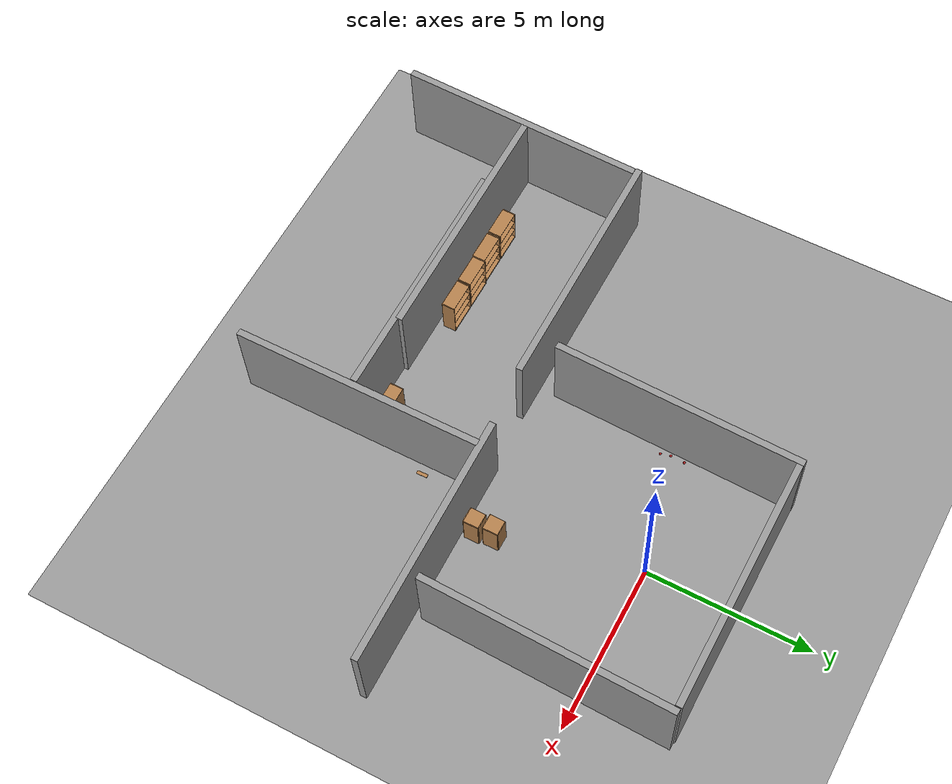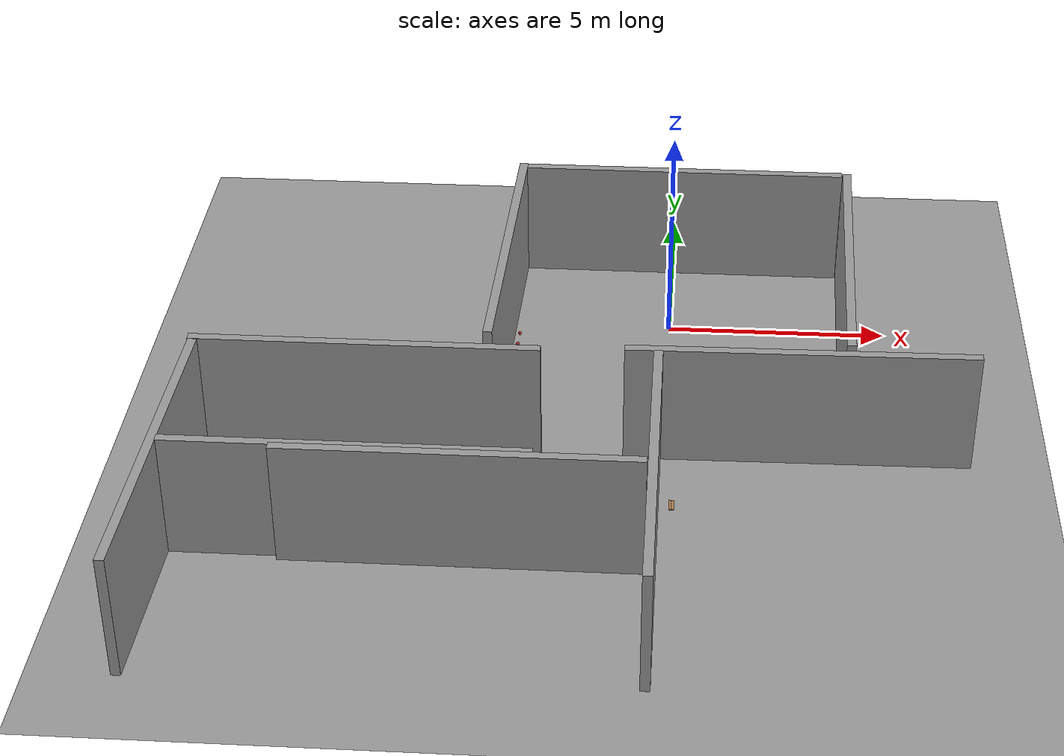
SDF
<sdf version="1.6">
 <world name="default">
  <light name="sun" type="directional">
   <pose>0 0 15 0 -0 0</pose>
   <diffuse>1 1 1 1</diffuse>
   <specular>0.1 0.1 0.1 1</specular>
   <attenuation>
    <range>1000</range>
    <constant>0.9</constant>
    <linear>0.01</linear>
    <quadratic>0.001</quadratic>
   </attenuation>
   <direction>-0.5 0.5 -1</direction>
  </light>
  <gravity>0 0 -9.8</gravity>
  <magnetic_field>6e-06 2.3e-05 -4.2e-05</magnetic_field>
  <atmosphere type="adiabatic"/>
  <physics name="default_physics" default="0" type="ode">
   <max_step_size>0.001</max_step_size>
   <real_time_factor>1</real_time_factor>
   <real_time_update_rate>1000</real_time_update_rate>
  </physics>
  <scene><ambient>0.4 0.4 0.4 1</ambient><background>0.7 0.7 0.7 1</background><shadows>1</shadows></scene>
  <spherical_coordinates>
   <surface_model>EARTH_WGS84</surface_model>
   <latitude_deg>0</latitude_deg>
   <longitude_deg>0</longitude_deg>
   <elevation>0</elevation>
   <heading_deg>0</heading_deg>
  </spherical_coordinates>
  <model name="ground_plane_0">
   <static>1</static>
   <link name="link">
    <collision name="collision">
     <geometry><plane><normal>0 0 1</normal><size>100 100</size></plane></geometry>
     <surface><friction><ode><mu>100</mu><mu2>50</mu2></ode></friction></surface>
    </collision>
    <visual name="visual">
     <cast_shadows>0</cast_shadows>
     <geometry><plane><normal>0 0 1</normal><size>100 100</size></plane></geometry>
     <material>
      <script><uri>file://media/materials/scripts/gazebo.material</uri><name>Gazebo/Grey</name></script>
     </material>
    </visual>
   </link>
   <pose>2.42095 0.905286 0 0 -0 0</pose>
  </model>
  <model name="cricket_ball">
   <link name="link">
    <pose>0 0 0.0375 0 -0 0</pose>
    <inertial>
     <mass>0.1467</mass>
     <inertia>
      <ixx>8.25187e-05</ixx>
      <ixy>0</ixy>
      <ixz>0</ixz>
      <iyy>8.25187e-05</iyy>
      <iyz>0</iyz>
      <izz>8.25187e-05</izz>
     </inertia>
    </inertial>
    <collision name="collision">
     <geometry><sphere><radius>0.0375</radius></sphere></geometry>
     <surface>
      <contact>
       <poissons_ratio>0.347</poissons_ratio>
       <elastic_modulus>8.8e+09</elastic_modulus>
       <ode><kp>100000</kp><kd>100</kd><max_vel>100</max_vel><min_depth>0.001</min_depth></ode>
      </contact>
      <friction>
       <torsional>
        <coefficient>1</coefficient>
        <use_patch_radius>0</use_patch_radius>
        <surface_radius>0.01</surface_radius>
       </torsional>
      </friction>
     </surface>
    </collision>
    <visual name="visual">
     <geometry><sphere><radius>0.0375</radius></sphere></geometry>
     <material>
      <script><uri>file://media/materials/scripts/gazebo.material</uri><name>Gazebo/Red</name></script>
     </material>
    </visual>
    <velocity_decay><linear>0</linear><angular>0.005</angular></velocity_decay>
   </link>
   <pose>-3.50926 -0.898465 -0.001014 0 -0 0</pose>
  </model>
  <model name="grey_wall_clone">
   <static>1</static>
   <link name="link">
    <pose>0 0 1.4 0 -0 0</pose>
    <collision name="collision"><geometry><box><size>7.5 0.2 2.8</size></box></geometry></collision>
    <visual name="visual">
     <cast_shadows>0</cast_shadows>
     <geometry><box><size>7.5 0.2 2.8</size></box></geometry>
     <material>
      <script>
       <uri>model://grey_wall/materials/scripts</uri>
       <uri>model://grey_wall/materials/textures</uri>
       <name>vrc/grey_wall</name>
      </script>
     </material>
    </visual>
   </link>
   <pose>-6.39018 -5.27088 0 0 -0 0</pose>
  </model>
  <model name="grey_wall_clone_5">
   <static>1</static>
   <link name="link">
    <pose>0 0 1.4 0 -0 0</pose>
    <collision name="collision"><geometry><box><size>7.5 0.2 2.8</size></box></geometry></collision>
    <visual name="visual">
     <cast_shadows>0</cast_shadows>
     <geometry><box><size>7.5 0.2 2.8</size></box></geometry>
     <material>
      <script>
       <uri>model://grey_wall/materials/scripts</uri>
       <uri>model://grey_wall/materials/textures</uri>
       <name>vrc/grey_wall</name>
      </script>
     </material>
    </visual>
   </link>
   <pose>-4.01108 -9.09254 0 0 -0 0</pose>
  </model>
  <model name="grey_wall_clone_4_clone_0">
   <static>1</static>
   <link name="link">
    <pose>0 0 1.4 0 -0 0</pose>
    <collision name="collision"><geometry><box><size>7.5 0.2 2.8</size></box></geometry></collision>
    <visual name="visual">
     <cast_shadows>0</cast_shadows>
     <geometry><box><size>7.5 0.2 2.8</size></box></geometry>
     <material>
      <script>
       <uri>model://grey_wall/materials/scripts</uri>
       <uri>model://grey_wall/materials/textures</uri>
       <name>vrc/grey_wall</name>
      </script>
     </material>
    </visual>
   </link>
   <pose>-3.72043 -0.963554 0 0 0 -1.59598</pose>
  </model>
  <model name="grey_wall_clone_4_clone_1">
   <static>1</static>
   <link name="link">
    <pose>0 0 1.4 0 -0 0</pose>
    <collision name="collision"><geometry><box><size>7.5 0.2 2.8</size></box></geometry></collision>
    <visual name="visual">
     <cast_shadows>0</cast_shadows>
     <geometry><box><size>7.5 0.2 2.8</size></box></geometry>
     <material>
      <script>
       <uri>model://grey_wall/materials/scripts</uri>
       <uri>model://grey_wall/materials/textures</uri>
       <name>vrc/grey_wall</name>
      </script>
     </material>
    </visual>
   </link>
   <pose>3.99569 -1.00901 0 0 0 -1.59598</pose>
  </model>
  <model name="grey_wall_clone_4_clone_2">
   <static>1</static>
   <link name="link">
    <pose>0 0 1.4 0 -0 0</pose>
    <collision name="collision"><geometry><box><size>7.5 0.2 2.8</size></box></geometry></collision>
    <visual name="visual">
     <cast_shadows>0</cast_shadows>
     <geometry><box><size>7.5 0.2 2.8</size></box></geometry>
     <material>
      <script>
       <uri>model://grey_wall/materials/scripts</uri>
       <uri>model://grey_wall/materials/textures</uri>
       <name>vrc/grey_wall</name>
      </script>
     </material>
    </visual>
   </link>
   <pose>-10.1132 -9.12903 0 0 0 -1.59598</pose>
  </model>
  <model name="grey_wall_clone_5_clone">
   <static>1</static>
   <link name="link">
    <pose>0 0 1.4 0 -0 0</pose>
    <collision name="collision"><geometry><box><size>7.5 0.2 2.8</size></box></geometry></collision>
    <visual name="visual">
     <cast_shadows>0</cast_shadows>
     <geometry><box><size>7.5 0.2 2.8</size></box></geometry>
     <material>
      <script>
       <uri>model://grey_wall/materials/scripts</uri>
       <uri>model://grey_wall/materials/textures</uri>
       <name>vrc/grey_wall</name>
      </script>
     </material>
    </visual>
   </link>
   <pose>0.218082 2.67827 0 0 -0 0</pose>
  </model>
  <model name="grey_wall_clone_5_clone_0">
   <static>1</static>
   <link name="link">
    <pose>0 0 1.4 0 -0 0</pose>
    <collision name="collision"><geometry><box><size>7.5 0.2 2.8</size></box></geometry></collision>
    <visual name="visual">
     <cast_shadows>0</cast_shadows>
     <geometry><box><size>7.5 0.2 2.8</size></box></geometry>
     <material>
      <script>
       <uri>model://grey_wall/materials/scripts</uri>
       <uri>model://grey_wall/materials/textures</uri>
       <name>vrc/grey_wall</name>
      </script>
     </material>
    </visual>
   </link>
   <pose>-6.27277 -8.96597 0 0 -0 0</pose>
  </model>
  <model name="cabinet">
   <static>1</static>
   <link name="cabinet_bottom_plate">
    <inertial>
     <pose>0 0 -1 0 -0 0</pose>
     <inertia><ixx>2.05</ixx><ixy>0</ixy><ixz>0</ixz><iyy>2.05</iyy><iyz>0</iyz><izz>2.05</izz></inertia>
     <mass>25</mass>
    </inertial>
    <collision name="cabinet_bottom_plate_geom">
     <pose>0 0 0.01 0 -0 0</pose>
     <geometry><box><size>0.45 0.45 0.02</size></box></geometry>
    </collision>
    <visual name="cabinet_bottom_plate_geom_visual">
     <pose>0 0 0.01 0 -0 0</pose>
     <geometry><box><size>0.45 0.45 0.02</size></box></geometry>
     <material>
      <script><uri>file://media/materials/scripts/gazebo.material</uri><name>Gazebo/Wood</name></script>
     </material>
    </visual>
    <collision name="cabinet_bottom_plate_geom_cabinet_back_plate">
     <pose>0.235 0 0.51 0 -0 0</pose>
     <geometry><box><size>0.02 0.45 1.02</size></box></geometry>
    </collision>
    <visual name="cabinet_bottom_plate_geom_cabinet_back_plate_visual">
     <pose>0.235 0 0.51 0 -0 0</pose>
     <geometry><box><size>0.02 0.45 1.02</size></box></geometry>
     <material>
      <script><uri>file://media/materials/scripts/gazebo.material</uri><name>Gazebo/Wood</name></script>
     </material>
    </visual>
    <collision name="cabinet_bottom_plate_geom_cabinet_left_plate">
     <pose>0 0.235 0.51 0 -0 0</pose>
     <geometry><box><size>0.45 0.02 1.02</size></box></geometry>
    </collision>
    <visual name="cabinet_bottom_plate_geom_cabinet_left_plate_visual">
     <pose>0 0.235 0.51 0 -0 0</pose>
     <geometry><box><size>0.45 0.02 1.02</size></box></geometry>
     <material>
      <script><uri>file://media/materials/scripts/gazebo.material</uri><name>Gazebo/Wood</name></script>
     </material>
    </visual>
    <collision name="cabinet_bottom_plate_geom_cabinet_middle_plate">
     <pose>0 0 0.51 0 -0 0</pose>
     <geometry><box><size>0.45 0.45 0.02</size></box></geometry>
    </collision>
    <visual name="cabinet_bottom_plate_geom_cabinet_middle_plate_visual">
     <pose>0 0 0.51 0 -0 0</pose>
     <geometry><box><size>0.45 0.45 0.02</size></box></geometry>
     <material>
      <script><uri>file://media/materials/scripts/gazebo.material</uri><name>Gazebo/Wood</name></script>
     </material>
    </visual>
    <collision name="cabinet_bottom_plate_geom_cabinet_right_plate">
     <pose>0 -0.235 0.51 0 -0 0</pose>
     <geometry><box><size>0.45 0.02 1.02</size></box></geometry>
    </collision>
    <visual name="cabinet_bottom_plate_geom_cabinet_right_plate_visual">
     <pose>0 -0.235 0.51 0 -0 0</pose>
     <geometry><box><size>0.45 0.02 1.02</size></box></geometry>
     <material>
      <script><uri>file://media/materials/scripts/gazebo.material</uri><name>Gazebo/Wood</name></script>
     </material>
    </visual>
    <collision name="cabinet_bottom_plate_geom_cabinet_top_plate">
     <pose>0 0 1.01 0 -0 0</pose>
     <geometry><box><size>0.45 0.45 0.02</size></box></geometry>
    </collision>
    <visual name="cabinet_bottom_plate_geom_cabinet_top_plate_visual">
     <pose>0 0 1.01 0 -0 0</pose>
     <geometry><box><size>0.45 0.45 0.02</size></box></geometry>
     <material>
      <script><uri>file://media/materials/scripts/gazebo.material</uri><name>Gazebo/Wood</name></script>
     </material>
    </visual>
   </link>
   <pose>1.12365 -4.66037 0 0 -0 0</pose>
  </model>
  <model name="bookshelf">
   <static>1</static>
   <link name="link">
    <inertial><mass>1</mass></inertial>
    <collision name="back">
     <pose>0 0.005 0.6 0 -0 0</pose>
     <geometry><box><size>0.9 0.01 1.2</size></box></geometry>
    </collision>
    <visual name="visual1">
     <pose>0 0.005 0.6 0 -0 0</pose>
     <geometry><box><size>0.9 0.01 1.2</size></box></geometry>
     <material>
      <script><uri>file://media/materials/scripts/gazebo.material</uri><name>Gazebo/Wood</name></script>
     </material>
    </visual>
    <collision name="left_side">
     <pose>0.45 -0.195 0.6 0 -0 0</pose>
     <geometry><box><size>0.02 0.4 1.2</size></box></geometry>
    </collision>
    <visual name="visual2">
     <pose>0.45 -0.195 0.6 0 -0 0</pose>
     <geometry><box><size>0.02 0.4 1.2</size></box></geometry>
     <material>
      <script><uri>file://media/materials/scripts/gazebo.material</uri><name>Gazebo/Wood</name></script>
     </material>
    </visual>
    <collision name="right_side">
     <pose>-0.45 -0.195 0.6 0 -0 0</pose>
     <geometry><box><size>0.02 0.4 1.2</size></box></geometry>
    </collision>
    <visual name="visual3">
     <pose>-0.45 -0.195 0.6 0 -0 0</pose>
     <geometry><box><size>0.02 0.4 1.2</size></box></geometry>
     <material>
      <script><uri>file://media/materials/scripts/gazebo.material</uri><name>Gazebo/Wood</name></script>
     </material>
    </visual>
    <collision name="bottom">
     <pose>0 -0.195 0.03 0 -0 0</pose>
     <geometry><box><size>0.88 0.4 0.06</size></box></geometry>
    </collision>
    <visual name="visual4">
     <pose>0 -0.195 0.03 0 -0 0</pose>
     <geometry><box><size>0.88 0.4 0.06</size></box></geometry>
     <material>
      <script><uri>file://media/materials/scripts/gazebo.material</uri><name>Gazebo/Wood</name></script>
     </material>
    </visual>
    <collision name="top">
     <pose>0 -0.195 1.19 0 -0 0</pose>
     <geometry><box><size>0.88 0.4 0.02</size></box></geometry>
    </collision>
    <visual name="visual5">
     <pose>0 -0.195 1.19 0 -0 0</pose>
     <geometry><box><size>0.88 0.4 0.02</size></box></geometry>
     <material>
      <script><uri>file://media/materials/scripts/gazebo.material</uri><name>Gazebo/Wood</name></script>
     </material>
    </visual>
    <collision name="low_shelf">
     <pose>0 -0.195 0.43 0 -0 0</pose>
     <geometry><box><size>0.88 0.4 0.02</size></box></geometry>
    </collision>
    <visual name="visual6">
     <pose>0 -0.195 0.43 0 -0 0</pose>
     <geometry><box><size>0.88 0.4 0.02</size></box></geometry>
     <material>
      <script><uri>file://media/materials/scripts/gazebo.material</uri><name>Gazebo/Wood</name></script>
     </material>
    </visual>
    <collision name="high_shelf">
     <pose>0 -0.195 0.8 0 -0 0</pose>
     <geometry><box><size>0.88 0.4 0.02</size></box></geometry>
    </collision>
    <visual name="visual7">
     <pose>0 -0.195 0.8 0 -0 0</pose>
     <geometry><box><size>0.88 0.4 0.02</size></box></geometry>
     <material>
      <script><uri>file://media/materials/scripts/gazebo.material</uri><name>Gazebo/Wood</name></script>
     </material>
    </visual>
   </link>
   <pose>-4.76761 -8.66826 0 0 -0 3.13443</pose>
  </model>
  <model name="cricket_ball_clone_clone_2">
   <link name="link">
    <pose>0 0 0.0375 0 -0 0</pose>
    <inertial>
     <mass>0.1467</mass>
     <inertia>
      <ixx>8.25187e-05</ixx>
      <ixy>0</ixy>
      <ixz>0</ixz>
      <iyy>8.25187e-05</iyy>
      <iyz>0</iyz>
      <izz>8.25187e-05</izz>
     </inertia>
    </inertial>
    <collision name="collision">
     <geometry><sphere><radius>0.0375</radius></sphere></geometry>
     <surface>
      <contact>
       <poissons_ratio>0.347</poissons_ratio>
       <elastic_modulus>8.8e+09</elastic_modulus>
       <ode><kp>100000</kp><kd>100</kd><max_vel>100</max_vel><min_depth>0.001</min_depth></ode>
      </contact>
      <friction>
       <torsional>
        <coefficient>1</coefficient>
        <use_patch_radius>0</use_patch_radius>
        <surface_radius>0.01</surface_radius>
       </torsional>
      </friction>
     </surface>
    </collision>
    <visual name="visual">
     <geometry><sphere><radius>0.0375</radius></sphere></geometry>
     <material>
      <script><uri>file://media/materials/scripts/gazebo.material</uri><name>Gazebo/Red</name></script>
     </material>
    </visual>
    <velocity_decay><linear>0</linear><angular>0.005</angular></velocity_decay>
   </link>
   <pose>-3.49227 -0.498234 0.020786 -1.13884 0 0</pose>
  </model>
  <model name="cricket_ball_clone_clone_3">
   <link name="link">
    <pose>0 0 0.0375 0 -0 0</pose>
    <inertial>
     <mass>0.1467</mass>
     <inertia>
      <ixx>8.25187e-05</ixx>
      <ixy>0</ixy>
      <ixz>0</ixz>
      <iyy>8.25187e-05</iyy>
      <iyz>0</iyz>
      <izz>8.25187e-05</izz>
     </inertia>
    </inertial>
    <collision name="collision">
     <geometry><sphere><radius>0.0375</radius></sphere></geometry>
     <surface>
      <contact>
       <poissons_ratio>0.347</poissons_ratio>
       <elastic_modulus>8.8e+09</elastic_modulus>
       <ode><kp>100000</kp><kd>100</kd><max_vel>100</max_vel><min_depth>0.001</min_depth></ode>
      </contact>
      <friction>
       <torsional>
        <coefficient>1</coefficient>
        <use_patch_radius>0</use_patch_radius>
        <surface_radius>0.01</surface_radius>
       </torsional>
      </friction>
     </surface>
    </collision>
    <visual name="visual">
     <geometry><sphere><radius>0.0375</radius></sphere></geometry>
     <material>
      <script><uri>file://media/materials/scripts/gazebo.material</uri><name>Gazebo/Red</name></script>
     </material>
    </visual>
    <velocity_decay><linear>0</linear><angular>0.005</angular></velocity_decay>
   </link>
   <pose>-3.43532 -1.18853 -0.001014 0 -0 0</pose>
  </model>
  <model name="bookshelf_clone">
   <static>1</static>
   <link name="link">
    <inertial><mass>1</mass></inertial>
    <collision name="back">
     <pose>0 0.005 0.6 0 -0 0</pose>
     <geometry><box><size>0.9 0.01 1.2</size></box></geometry>
    </collision>
    <visual name="visual1">
     <pose>0 0.005 0.6 0 -0 0</pose>
     <geometry><box><size>0.9 0.01 1.2</size></box></geometry>
     <material>
      <script><uri>file://media/materials/scripts/gazebo.material</uri><name>Gazebo/Wood</name></script>
     </material>
    </visual>
    <collision name="left_side">
     <pose>0.45 -0.195 0.6 0 -0 0</pose>
     <geometry><box><size>0.02 0.4 1.2</size></box></geometry>
    </collision>
    <visual name="visual2">
     <pose>0.45 -0.195 0.6 0 -0 0</pose>
     <geometry><box><size>0.02 0.4 1.2</size></box></geometry>
     <material>
      <script><uri>file://media/materials/scripts/gazebo.material</uri><name>Gazebo/Wood</name></script>
     </material>
    </visual>
    <collision name="right_side">
     <pose>-0.45 -0.195 0.6 0 -0 0</pose>
     <geometry><box><size>0.02 0.4 1.2</size></box></geometry>
    </collision>
    <visual name="visual3">
     <pose>-0.45 -0.195 0.6 0 -0 0</pose>
     <geometry><box><size>0.02 0.4 1.2</size></box></geometry>
     <material>
      <script><uri>file://media/materials/scripts/gazebo.material</uri><name>Gazebo/Wood</name></script>
     </material>
    </visual>
    <collision name="bottom">
     <pose>0 -0.195 0.03 0 -0 0</pose>
     <geometry><box><size>0.88 0.4 0.06</size></box></geometry>
    </collision>
    <visual name="visual4">
     <pose>0 -0.195 0.03 0 -0 0</pose>
     <geometry><box><size>0.88 0.4 0.06</size></box></geometry>
     <material>
      <script><uri>file://media/materials/scripts/gazebo.material</uri><name>Gazebo/Wood</name></script>
     </material>
    </visual>
    <collision name="top">
     <pose>0 -0.195 1.19 0 -0 0</pose>
     <geometry><box><size>0.88 0.4 0.02</size></box></geometry>
    </collision>
    <visual name="visual5">
     <pose>0 -0.195 1.19 0 -0 0</pose>
     <geometry><box><size>0.88 0.4 0.02</size></box></geometry>
     <material>
      <script><uri>file://media/materials/scripts/gazebo.material</uri><name>Gazebo/Wood</name></script>
     </material>
    </visual>
    <collision name="low_shelf">
     <pose>0 -0.195 0.43 0 -0 0</pose>
     <geometry><box><size>0.88 0.4 0.02</size></box></geometry>
    </collision>
    <visual name="visual6">
     <pose>0 -0.195 0.43 0 -0 0</pose>
     <geometry><box><size>0.88 0.4 0.02</size></box></geometry>
     <material>
      <script><uri>file://media/materials/scripts/gazebo.material</uri><name>Gazebo/Wood</name></script>
     </material>
    </visual>
    <collision name="high_shelf">
     <pose>0 -0.195 0.8 0 -0 0</pose>
     <geometry><box><size>0.88 0.4 0.02</size></box></geometry>
    </collision>
    <visual name="visual7">
     <pose>0 -0.195 0.8 0 -0 0</pose>
     <geometry><box><size>0.88 0.4 0.02</size></box></geometry>
     <material>
      <script><uri>file://media/materials/scripts/gazebo.material</uri><name>Gazebo/Wood</name></script>
     </material>
    </visual>
   </link>
   <pose>-5.71485 -8.66081 0 0 -0 3.13443</pose>
  </model>
  <model name="bookshelf_clone_0">
   <static>1</static>
   <link name="link">
    <inertial><mass>1</mass></inertial>
    <collision name="back">
     <pose>0 0.005 0.6 0 -0 0</pose>
     <geometry><box><size>0.9 0.01 1.2</size></box></geometry>
    </collision>
    <visual name="visual1">
     <pose>0 0.005 0.6 0 -0 0</pose>
     <geometry><box><size>0.9 0.01 1.2</size></box></geometry>
     <material>
      <script><uri>file://media/materials/scripts/gazebo.material</uri><name>Gazebo/Wood</name></script>
     </material>
    </visual>
    <collision name="left_side">
     <pose>0.45 -0.195 0.6 0 -0 0</pose>
     <geometry><box><size>0.02 0.4 1.2</size></box></geometry>
    </collision>
    <visual name="visual2">
     <pose>0.45 -0.195 0.6 0 -0 0</pose>
     <geometry><box><size>0.02 0.4 1.2</size></box></geometry>
     <material>
      <script><uri>file://media/materials/scripts/gazebo.material</uri><name>Gazebo/Wood</name></script>
     </material>
    </visual>
    <collision name="right_side">
     <pose>-0.45 -0.195 0.6 0 -0 0</pose>
     <geometry><box><size>0.02 0.4 1.2</size></box></geometry>
    </collision>
    <visual name="visual3">
     <pose>-0.45 -0.195 0.6 0 -0 0</pose>
     <geometry><box><size>0.02 0.4 1.2</size></box></geometry>
     <material>
      <script><uri>file://media/materials/scripts/gazebo.material</uri><name>Gazebo/Wood</name></script>
     </material>
    </visual>
    <collision name="bottom">
     <pose>0 -0.195 0.03 0 -0 0</pose>
     <geometry><box><size>0.88 0.4 0.06</size></box></geometry>
    </collision>
    <visual name="visual4">
     <pose>0 -0.195 0.03 0 -0 0</pose>
     <geometry><box><size>0.88 0.4 0.06</size></box></geometry>
     <material>
      <script><uri>file://media/materials/scripts/gazebo.material</uri><name>Gazebo/Wood</name></script>
     </material>
    </visual>
    <collision name="top">
     <pose>0 -0.195 1.19 0 -0 0</pose>
     <geometry><box><size>0.88 0.4 0.02</size></box></geometry>
    </collision>
    <visual name="visual5">
     <pose>0 -0.195 1.19 0 -0 0</pose>
     <geometry><box><size>0.88 0.4 0.02</size></box></geometry>
     <material>
      <script><uri>file://media/materials/scripts/gazebo.material</uri><name>Gazebo/Wood</name></script>
     </material>
    </visual>
    <collision name="low_shelf">
     <pose>0 -0.195 0.43 0 -0 0</pose>
     <geometry><box><size>0.88 0.4 0.02</size></box></geometry>
    </collision>
    <visual name="visual6">
     <pose>0 -0.195 0.43 0 -0 0</pose>
     <geometry><box><size>0.88 0.4 0.02</size></box></geometry>
     <material>
      <script><uri>file://media/materials/scripts/gazebo.material</uri><name>Gazebo/Wood</name></script>
     </material>
    </visual>
    <collision name="high_shelf">
     <pose>0 -0.195 0.8 0 -0 0</pose>
     <geometry><box><size>0.88 0.4 0.02</size></box></geometry>
    </collision>
    <visual name="visual7">
     <pose>0 -0.195 0.8 0 -0 0</pose>
     <geometry><box><size>0.88 0.4 0.02</size></box></geometry>
     <material>
      <script><uri>file://media/materials/scripts/gazebo.material</uri><name>Gazebo/Wood</name></script>
     </material>
    </visual>
   </link>
   <pose>-6.63043 -8.68161 0 0 -0 3.13443</pose>
  </model>
  <model name="bookshelf_clone_1">
   <static>1</static>
   <link name="link">
    <inertial><mass>1</mass></inertial>
    <collision name="back">
     <pose>0 0.005 0.6 0 -0 0</pose>
     <geometry><box><size>0.9 0.01 1.2</size></box></geometry>
    </collision>
    <visual name="visual1">
     <pose>0 0.005 0.6 0 -0 0</pose>
     <geometry><box><size>0.9 0.01 1.2</size></box></geometry>
     <material>
      <script><uri>file://media/materials/scripts/gazebo.material</uri><name>Gazebo/Wood</name></script>
     </material>
    </visual>
    <collision name="left_side">
     <pose>0.45 -0.195 0.6 0 -0 0</pose>
     <geometry><box><size>0.02 0.4 1.2</size></box></geometry>
    </collision>
    <visual name="visual2">
     <pose>0.45 -0.195 0.6 0 -0 0</pose>
     <geometry><box><size>0.02 0.4 1.2</size></box></geometry>
     <material>
      <script><uri>file://media/materials/scripts/gazebo.material</uri><name>Gazebo/Wood</name></script>
     </material>
    </visual>
    <collision name="right_side">
     <pose>-0.45 -0.195 0.6 0 -0 0</pose>
     <geometry><box><size>0.02 0.4 1.2</size></box></geometry>
    </collision>
    <visual name="visual3">
     <pose>-0.45 -0.195 0.6 0 -0 0</pose>
     <geometry><box><size>0.02 0.4 1.2</size></box></geometry>
     <material>
      <script><uri>file://media/materials/scripts/gazebo.material</uri><name>Gazebo/Wood</name></script>
     </material>
    </visual>
    <collision name="bottom">
     <pose>0 -0.195 0.03 0 -0 0</pose>
     <geometry><box><size>0.88 0.4 0.06</size></box></geometry>
    </collision>
    <visual name="visual4">
     <pose>0 -0.195 0.03 0 -0 0</pose>
     <geometry><box><size>0.88 0.4 0.06</size></box></geometry>
     <material>
      <script><uri>file://media/materials/scripts/gazebo.material</uri><name>Gazebo/Wood</name></script>
     </material>
    </visual>
    <collision name="top">
     <pose>0 -0.195 1.19 0 -0 0</pose>
     <geometry><box><size>0.88 0.4 0.02</size></box></geometry>
    </collision>
    <visual name="visual5">
     <pose>0 -0.195 1.19 0 -0 0</pose>
     <geometry><box><size>0.88 0.4 0.02</size></box></geometry>
     <material>
      <script><uri>file://media/materials/scripts/gazebo.material</uri><name>Gazebo/Wood</name></script>
     </material>
    </visual>
    <collision name="low_shelf">
     <pose>0 -0.195 0.43 0 -0 0</pose>
     <geometry><box><size>0.88 0.4 0.02</size></box></geometry>
    </collision>
    <visual name="visual6">
     <pose>0 -0.195 0.43 0 -0 0</pose>
     <geometry><box><size>0.88 0.4 0.02</size></box></geometry>
     <material>
      <script><uri>file://media/materials/scripts/gazebo.material</uri><name>Gazebo/Wood</name></script>
     </material>
    </visual>
    <collision name="high_shelf">
     <pose>0 -0.195 0.8 0 -0 0</pose>
     <geometry><box><size>0.88 0.4 0.02</size></box></geometry>
    </collision>
    <visual name="visual7">
     <pose>0 -0.195 0.8 0 -0 0</pose>
     <geometry><box><size>0.88 0.4 0.02</size></box></geometry>
     <material>
      <script><uri>file://media/materials/scripts/gazebo.material</uri><name>Gazebo/Wood</name></script>
     </material>
    </visual>
   </link>
   <pose>-7.59022 -8.66987 0 0 -0 3.13443</pose>
  </model>
  <model name="grey_wall_clone_4_clone_2_clone_0">
   <static>1</static>
   <link name="link">
    <pose>0 0 1.4 0 -0 0</pose>
    <collision name="collision"><geometry><box><size>7.5 0.2 2.8</size></box></geometry></collision>
    <visual name="visual">
     <cast_shadows>0</cast_shadows>
     <geometry><box><size>7.5 0.2 2.8</size></box></geometry>
     <material>
      <script>
       <uri>model://grey_wall/materials/scripts</uri>
       <uri>model://grey_wall/materials/textures</uri>
       <name>vrc/grey_wall</name>
      </script>
     </material>
    </visual>
   </link>
   <pose>2.87495 -5.07979 0 0 0 -3.12951</pose>
  </model>
  <model name="wooden_board_clone_4">
   <link name="base">
    <pose>0 0 0.00523 0 -0 0</pose>
    <inertial>
     <mass>0.2765</mass>
     <inertia>
      <ixx>0.0025148</ixx>
      <ixy>0</ixy>
      <ixz>0</ixz>
      <iyy>0.00024037</iyy>
      <iyz>0</iyz>
      <izz>0.00275013</izz>
     </inertia>
    </inertial>
    <collision name="collision">
     <geometry><box><size>0.1016 0.3302 0.01046</size></box></geometry>
     <surface>
      <contact>
       <poissons_ratio>0.347</poissons_ratio>
       <elastic_modulus>8.8e+09</elastic_modulus>
       <ode><kp>100000</kp><kd>100</kd><max_vel>100</max_vel><min_depth>0.001</min_depth></ode>
      </contact>
      <friction>
       <torsional>
        <coefficient>1</coefficient>
        <use_patch_radius>0</use_patch_radius>
        <surface_radius>0.01</surface_radius>
       </torsional>
      </friction>
     </surface>
    </collision>
    <visual name="visual">
     <geometry><box><size>0.1016 0.3302 0.01046</size></box></geometry>
     <material>
      <script><uri>file://media/materials/scripts/gazebo.material</uri><name>Gazebo/Wood</name></script>
     </material>
    </visual>
    <visual name="tee_nut_1">
     <pose>0 -0.116 0 0 -0 0</pose>
     <geometry><cylinder><radius>0.00635</radius><length>0.0105646</length></cylinder></geometry>
     <material>
      <script><uri>file://media/materials/scripts/gazebo.material</uri><name>Gazebo/Grey</name></script>
     </material>
    </visual>
    <visual name="tee_nut_2">
     <pose>0 -0.038 0 0 -0 0</pose>
     <geometry><cylinder><radius>0.00635</radius><length>0.0105646</length></cylinder></geometry>
     <material>
      <script><uri>file://media/materials/scripts/gazebo.material</uri><name>Gazebo/Grey</name></script>
     </material>
    </visual>
    <visual name="tee_nut_3">
     <pose>0 0.038 0 0 -0 0</pose>
     <geometry><cylinder><radius>0.00635</radius><length>0.0105646</length></cylinder></geometry>
     <material>
      <script><uri>file://media/materials/scripts/gazebo.material</uri><name>Gazebo/Grey</name></script>
     </material>
    </visual>
    <visual name="tee_nut_4">
     <pose>0 0.116 0 0 -0 0</pose>
     <geometry><cylinder><radius>0.00635</radius><length>0.0105646</length></cylinder></geometry>
     <material>
      <script><uri>file://media/materials/scripts/gazebo.material</uri><name>Gazebo/Grey</name></script>
     </material>
    </visual>
   </link>
   <pose>0.223994 -6.85573 -0.001007 0 -0 0.036257</pose>
  </model>
  <model name="bookshelf_0">
   <static>1</static>
   <link name="link">
    <inertial><mass>1</mass></inertial>
    <collision name="back">
     <pose>0 0.005 0.6 0 -0 0</pose>
     <geometry><box><size>0.9 0.01 1.2</size></box></geometry>
    </collision>
    <visual name="visual1">
     <pose>0 0.005 0.6 0 -0 0</pose>
     <geometry><box><size>0.9 0.01 1.2</size></box></geometry>
     <material>
      <script><uri>file://media/materials/scripts/gazebo.material</uri><name>Gazebo/Wood</name></script>
     </material>
    </visual>
    <collision name="left_side">
     <pose>0.45 -0.195 0.6 0 -0 0</pose>
     <geometry><box><size>0.02 0.4 1.2</size></box></geometry>
    </collision>
    <visual name="visual2">
     <pose>0.45 -0.195 0.6 0 -0 0</pose>
     <geometry><box><size>0.02 0.4 1.2</size></box></geometry>
     <material>
      <script><uri>file://media/materials/scripts/gazebo.material</uri><name>Gazebo/Wood</name></script>
     </material>
    </visual>
    <collision name="right_side">
     <pose>-0.45 -0.195 0.6 0 -0 0</pose>
     <geometry><box><size>0.02 0.4 1.2</size></box></geometry>
    </collision>
    <visual name="visual3">
     <pose>-0.45 -0.195 0.6 0 -0 0</pose>
     <geometry><box><size>0.02 0.4 1.2</size></box></geometry>
     <material>
      <script><uri>file://media/materials/scripts/gazebo.material</uri><name>Gazebo/Wood</name></script>
     </material>
    </visual>
    <collision name="bottom">
     <pose>0 -0.195 0.03 0 -0 0</pose>
     <geometry><box><size>0.88 0.4 0.06</size></box></geometry>
    </collision>
    <visual name="visual4">
     <pose>0 -0.195 0.03 0 -0 0</pose>
     <geometry><box><size>0.88 0.4 0.06</size></box></geometry>
     <material>
      <script><uri>file://media/materials/scripts/gazebo.material</uri><name>Gazebo/Wood</name></script>
     </material>
    </visual>
    <collision name="top">
     <pose>0 -0.195 1.19 0 -0 0</pose>
     <geometry><box><size>0.88 0.4 0.02</size></box></geometry>
    </collision>
    <visual name="visual5">
     <pose>0 -0.195 1.19 0 -0 0</pose>
     <geometry><box><size>0.88 0.4 0.02</size></box></geometry>
     <material>
      <script><uri>file://media/materials/scripts/gazebo.material</uri><name>Gazebo/Wood</name></script>
     </material>
    </visual>
    <collision name="low_shelf">
     <pose>0 -0.195 0.43 0 -0 0</pose>
     <geometry><box><size>0.88 0.4 0.02</size></box></geometry>
    </collision>
    <visual name="visual6">
     <pose>0 -0.195 0.43 0 -0 0</pose>
     <geometry><box><size>0.88 0.4 0.02</size></box></geometry>
     <material>
      <script><uri>file://media/materials/scripts/gazebo.material</uri><name>Gazebo/Wood</name></script>
     </material>
    </visual>
    <collision name="high_shelf">
     <pose>0 -0.195 0.8 0 -0 0</pose>
     <geometry><box><size>0.88 0.4 0.02</size></box></geometry>
    </collision>
    <visual name="visual7">
     <pose>0 -0.195 0.8 0 -0 0</pose>
     <geometry><box><size>0.88 0.4 0.02</size></box></geometry>
     <material>
      <script><uri>file://media/materials/scripts/gazebo.material</uri><name>Gazebo/Wood</name></script>
     </material>
    </visual>
   </link>
   <pose>-0.916516 -8.30112 0 0 -0 0</pose>
  </model>
  <model name="cabinet_0">
   <static>1</static>
   <link name="cabinet_bottom_plate">
    <inertial>
     <pose>0 0 -1 0 -0 0</pose>
     <inertia><ixx>2.05</ixx><ixy>0</ixy><ixz>0</ixz><iyy>2.05</iyy><iyz>0</iyz><izz>2.05</izz></inertia>
     <mass>25</mass>
    </inertial>
    <collision name="cabinet_bottom_plate_geom">
     <pose>0 0 0.01 0 -0 0</pose>
     <geometry><box><size>0.45 0.45 0.02</size></box></geometry>
    </collision>
    <visual name="cabinet_bottom_plate_geom_visual">
     <pose>0 0 0.01 0 -0 0</pose>
     <geometry><box><size>0.45 0.45 0.02</size></box></geometry>
     <material>
      <script><uri>file://media/materials/scripts/gazebo.material</uri><name>Gazebo/Wood</name></script>
     </material>
    </visual>
    <collision name="cabinet_bottom_plate_geom_cabinet_back_plate">
     <pose>0.235 0 0.51 0 -0 0</pose>
     <geometry><box><size>0.02 0.45 1.02</size></box></geometry>
    </collision>
    <visual name="cabinet_bottom_plate_geom_cabinet_back_plate_visual">
     <pose>0.235 0 0.51 0 -0 0</pose>
     <geometry><box><size>0.02 0.45 1.02</size></box></geometry>
     <material>
      <script><uri>file://media/materials/scripts/gazebo.material</uri><name>Gazebo/Wood</name></script>
     </material>
    </visual>
    <collision name="cabinet_bottom_plate_geom_cabinet_left_plate">
     <pose>0 0.235 0.51 0 -0 0</pose>
     <geometry><box><size>0.45 0.02 1.02</size></box></geometry>
    </collision>
    <visual name="cabinet_bottom_plate_geom_cabinet_left_plate_visual">
     <pose>0 0.235 0.51 0 -0 0</pose>
     <geometry><box><size>0.45 0.02 1.02</size></box></geometry>
     <material>
      <script><uri>file://media/materials/scripts/gazebo.material</uri><name>Gazebo/Wood</name></script>
     </material>
    </visual>
    <collision name="cabinet_bottom_plate_geom_cabinet_middle_plate">
     <pose>0 0 0.51 0 -0 0</pose>
     <geometry><box><size>0.45 0.45 0.02</size></box></geometry>
    </collision>
    <visual name="cabinet_bottom_plate_geom_cabinet_middle_plate_visual">
     <pose>0 0 0.51 0 -0 0</pose>
     <geometry><box><size>0.45 0.45 0.02</size></box></geometry>
     <material>
      <script><uri>file://media/materials/scripts/gazebo.material</uri><name>Gazebo/Wood</name></script>
     </material>
    </visual>
    <collision name="cabinet_bottom_plate_geom_cabinet_right_plate">
     <pose>0 -0.235 0.51 0 -0 0</pose>
     <geometry><box><size>0.45 0.02 1.02</size></box></geometry>
    </collision>
    <visual name="cabinet_bottom_plate_geom_cabinet_right_plate_visual">
     <pose>0 -0.235 0.51 0 -0 0</pose>
     <geometry><box><size>0.45 0.02 1.02</size></box></geometry>
     <material>
      <script><uri>file://media/materials/scripts/gazebo.material</uri><name>Gazebo/Wood</name></script>
     </material>
    </visual>
    <collision name="cabinet_bottom_plate_geom_cabinet_top_plate">
     <pose>0 0 1.01 0 -0 0</pose>
     <geometry><box><size>0.45 0.45 0.02</size></box></geometry>
    </collision>
    <visual name="cabinet_bottom_plate_geom_cabinet_top_plate_visual">
     <pose>0 0 1.01 0 -0 0</pose>
     <geometry><box><size>0.45 0.45 0.02</size></box></geometry>
     <material>
      <script><uri>file://media/materials/scripts/gazebo.material</uri><name>Gazebo/Wood</name></script>
     </material>
    </visual>
   </link>
   <pose>1.05698 -4.09987 0 0 -0 0</pose>
  </model>
  <model name="grey_wall_clone_5_clone_1">
   <static>1</static>
   <link name="link">
    <pose>0 0 1.4 0 -0 0</pose>
    <collision name="collision"><geometry><box><size>7.5 0.2 2.8</size></box></geometry></collision>
    <visual name="visual">
     <cast_shadows>0</cast_shadows>
     <geometry><box><size>7.5 0.2 2.8</size></box></geometry>
     <material>
      <script>
       <uri>model://grey_wall/materials/scripts</uri>
       <uri>model://grey_wall/materials/textures</uri>
       <name>vrc/grey_wall</name>
      </script>
     </material>
    </visual>
   </link>
   <pose>-0.143518 -8.93617 0 0 0 -1.56675</pose>
  </model>
 </world>
</sdf>
